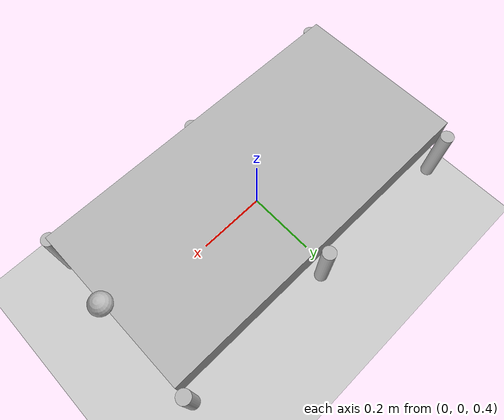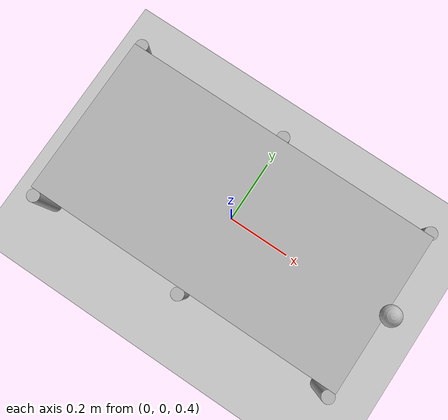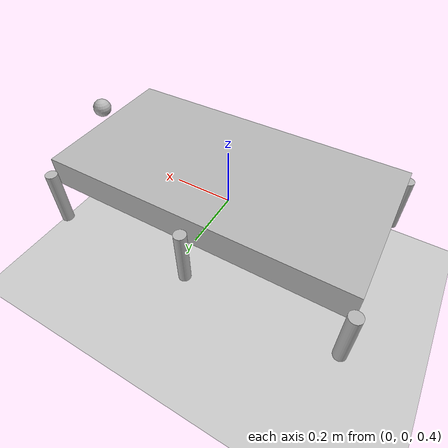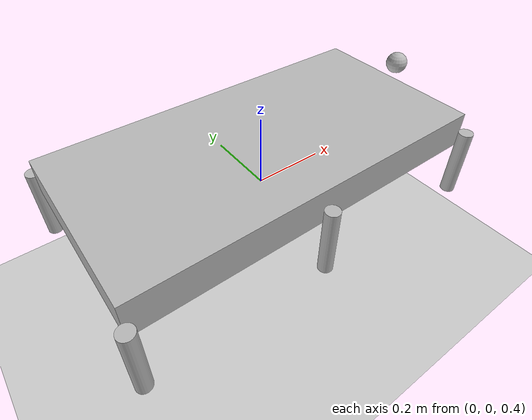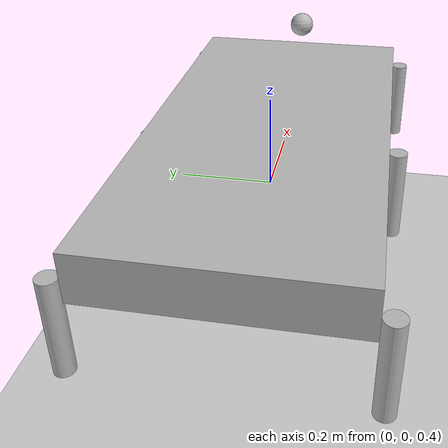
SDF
<?xml version="1.0"?>
<sdf version="1.4">
  <world name="default">

    <!-- Ground Plane -->
    <include>
      <uri>model://ground_plane</uri>
    </include>

    <include>
      <uri>model://sun</uri>
    </include>

    <model name="car">
    <pose>0.0 0.0 .3 0 0 0</pose>
    <link name='chassis'>
        <gravity>0</gravity>
          <pose>0 0 .2 0 0 0</pose>
          <inertial>
            <inertia>
              <ixx>1</ixx>
              <ixy>0</ixy>
              <ixz>0</ixz>
              <iyy>1</iyy>
              <iyz>0</iyz>
              <izz>1</izz>
            </inertia>
            <mass>5.0</mass>
          </inertial>
          <collision name='collision'>
            <geometry>
              <box>
                <size>1 .5 .1</size>
              </box>
            </geometry>
          </collision>

          <visual name='visual'>
            <geometry>
              <box>
                <size>1 .5 .1</size>
              </box>
            </geometry>
          </visual>
      </link>

      <link name="front_indicator">
        <pose>.5 0 0.3 0 0 0</pose>
          <geometry>
              <sphere>
              <radius>.03</radius>
            </sphere>
          </geometry>
        <visual name="visual">
          <geometry>
              <sphere>
              <radius>.03</radius>
            </sphere>
          </geometry>
          <material>Gazebo/Blue</material>
        </visual>
      </link>

      <link name="left_front_wheel">
        <pose>.5 .27 .1 0 0 1.5707</pose>
        <inertial>
          <inertia>
            <ixx>1</ixx>
            <ixy>0</ixy>
            <ixz>0</ixz>
            <iyy>1</iyy>
            <iyz>0</iyz>
            <izz>1</izz>
          </inertia>
          <mass>1.0</mass>
        </inertial>
        <collision name="collision">
          <geometry>
            <cylinder>
              <radius>.02</radius>
              <length>.2</length>
            </cylinder>
          </geometry>
        </collision>
        <visual name="visual">
          <geometry>
            <cylinder>
              <radius>.02</radius>
              <length>.2</length>
            </cylinder>
          </geometry>
        </visual>
      </link>

      <link name="right_front_wheel">
        <pose>.5 -.27 .1 0 0 1.5707</pose>
        <inertial>
          <inertia>
            <ixx>1</ixx>
            <ixy>0</ixy>
            <ixz>0</ixz>
            <iyy>1</iyy>
            <iyz>0</iyz>
            <izz>1</izz>
          </inertia>
          <mass>1.0</mass>
        </inertial>
        <collision name="collision">
          <geometry>
            <cylinder>
              <radius>.02</radius>
              <length>.2</length>
            </cylinder>
          </geometry>
        </collision>
        <visual name="visual">
          <geometry>
            <cylinder>
              <radius>.02</radius>
              <length>.2</length>
            </cylinder>
          </geometry>
        </visual>
      </link>

      <link name="left_middle_wheel">
        <pose>0 .27 .1 0 0 1.5707</pose>
        <inertial>
          <inertia>
            <ixx>1</ixx>
            <ixy>0</ixy>
            <ixz>0</ixz>
            <iyy>1</iyy>
            <iyz>0</iyz>
            <izz>1</izz>
          </inertia>
          <mass>1.0</mass>
        </inertial>
        <collision name="collision">
          <geometry>
            <cylinder>
              <radius>.02</radius>
              <length>.2</length>
            </cylinder>
          </geometry>
        </collision>
        <visual name="visual">
          <geometry>
            <cylinder>
              <radius>.02</radius>
              <length>.2</length>
            </cylinder>
          </geometry>
        </visual>
      </link>

      <link name="right_middle_wheel">
        <pose>0 -.27 .1 0 0 1.5707</pose>
        <inertial>
          <inertia>
            <ixx>1</ixx>
            <ixy>0</ixy>
            <ixz>0</ixz>
            <iyy>1</iyy>
            <iyz>0</iyz>
            <izz>1</izz>
          </inertia>
          <mass>1.0</mass>
        </inertial>
        <collision name="collision">
          <geometry>
            <cylinder>
              <radius>.02</radius>
              <length>.2</length>
            </cylinder>
          </geometry>
        </collision>
        <visual name="visual">
          <geometry>
            <cylinder>
              <radius>.02</radius>
              <length>.2</length>
            </cylinder>
          </geometry>
        </visual>
      </link>

      <link name="left_back_wheel">
        <pose>-.5 .27 .1 0 0 1.5707</pose>
        <inertial>
          <inertia>
            <ixx>1</ixx>
            <ixy>0</ixy>
            <ixz>0</ixz>
            <iyy>1</iyy>
            <iyz>0</iyz>
            <izz>1</izz>
          </inertia>
          <mass>1.0</mass>
        </inertial>
        <collision name="collision">
          <geometry>
            <cylinder>
              <radius>.02</radius>
              <length>.2</length>
            </cylinder>
          </geometry>
        </collision>
        <visual name="visual">
          <geometry>
            <cylinder>
              <radius>.02</radius>
              <length>.2</length>
            </cylinder>
          </geometry>
        </visual>
      </link>

      <link name="right_back_wheel">
        <pose>-.5 -.27 .1 0 0 1.5707</pose>
        <inertial>
          <inertia>
            <ixx>1</ixx>
            <ixy>0</ixy>
            <ixz>0</ixz>
            <iyy>1</iyy>
            <iyz>0</iyz>
            <izz>1</izz>
          </inertia>
          <mass>1.0</mass>
        </inertial>
        <collision name="collision">
          <geometry>
            <cylinder>
              <radius>.02</radius>
              <length>.2</length>
            </cylinder>
          </geometry>
        </collision>
        <visual name="visual">
          <geometry>
            <cylinder>
              <radius>.02</radius>
              <length>.2</length>
            </cylinder>
          </geometry>
        </visual>
      </link>

      <joint type="revolute" name="left_front_wheel_hinge">
        <pose>0 0 .1 0 0 0</pose>
        <child>left_front_wheel</child>
        <parent>chassis</parent>
        <axis>
          <xyz>0 1 0</xyz>
        </axis>
      </joint>

      <joint type="revolute" name="right_back_wheel_hinge">
        <pose>0 0 .1 0 0 0</pose>
        <child>right_back_wheel</child>
        <parent>chassis</parent>
        <axis>
          <xyz>0 1 0</xyz>
        </axis>
      </joint>

      <joint type="revolute" name="left_middle_wheel_hinge">
        <pose>0 0 .1 0 0 0</pose>
        <child>left_middle_wheel</child>
        <parent>chassis</parent>
        <axis>
          <xyz>0 1 0</xyz>
        </axis>
      </joint>

      <joint type="revolute" name="right_middle_wheel_hinge">
        <pose>0 0 .1 0 0 0</pose>
        <child>right_middle_wheel</child>
        <parent>chassis</parent>
        <axis>
          <xyz>0 1 0</xyz>
        </axis>
      </joint>

      <joint type="revolute" name="left_back_wheel_hinge">
        <pose>0 0 .1 0 0 0</pose>
        <child>left_back_wheel</child>
        <parent>chassis</parent>
        <axis>
          <xyz>0 1 0</xyz>
        </axis>
      </joint>

      <joint type="revolute" name="right_front_wheel_hinge">
        <pose>0 0 .1 0 0 0</pose>
        <child>right_front_wheel</child>
        <parent>chassis</parent>
        <axis>
          <xyz>0 1 0</xyz>
        </axis>
      </joint>

      <joint type="fixed" name="indicator_joint">
        <pose>0 0 0 0 0 0</pose>
        <child>front_indicator</child>
        <parent>chassis</parent>
      </joint>

      <plugin name="legged" filename="liblegged.so"/>
    </model>
</world>
</sdf>
